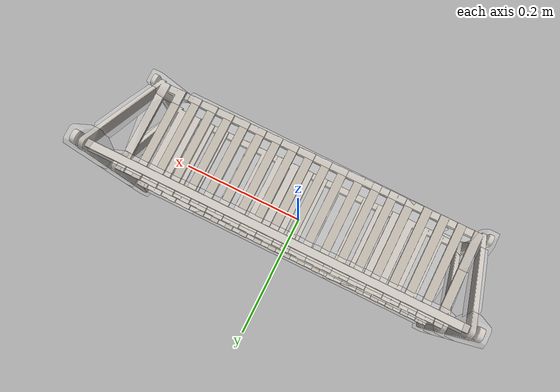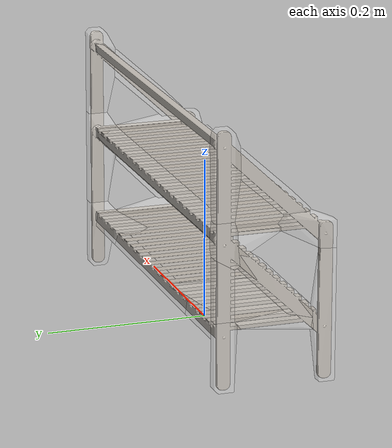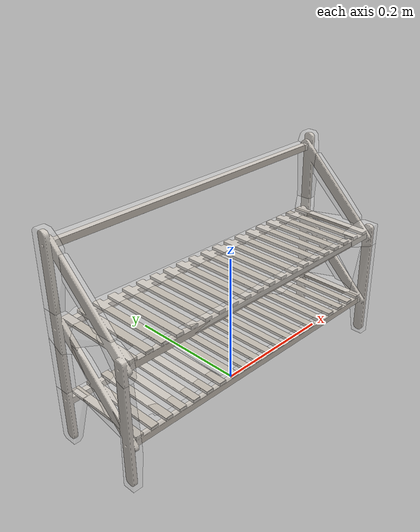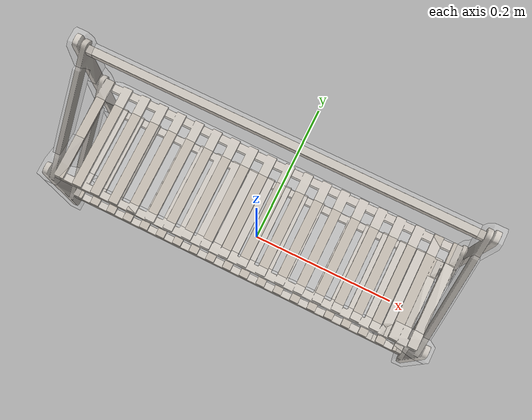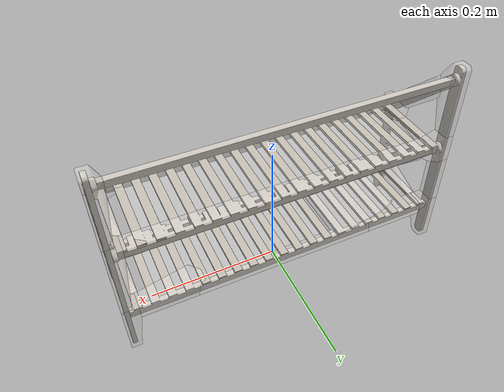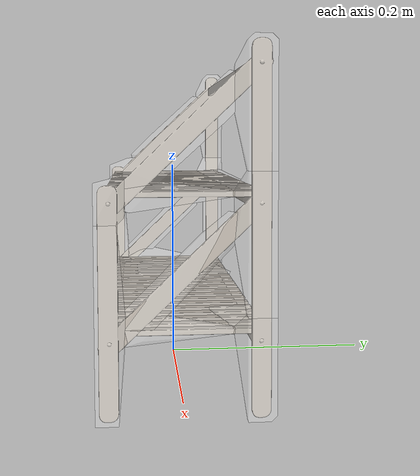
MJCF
<mujoco model="model">
  <compiler angle="radian"/>
  <asset>
    <mesh file="visual/Shelf007.obj" name="Shelf007_vis"/>
    <texture file="visual/T_Shelf007_BC001.png" name="Shelf007_material" type="2d"/>
    <material name="Shelf007_material" rgba="1 1 1 1.0" texture="Shelf007_material" shininess="0.4472135901451111" specular="0.3103448502657381"/>
    <mesh file="collision/Shelf007013.obj" name="Shelf007013_mesh"/>
    <mesh file="collision/Shelf007021.obj" name="Shelf007021_mesh"/>
    <mesh file="collision/Shelf007018.obj" name="Shelf007018_mesh"/>
    <mesh file="collision/Shelf007016.obj" name="Shelf007016_mesh"/>
    <mesh file="collision/Shelf007002.obj" name="Shelf007002_mesh"/>
    <mesh file="collision/Shelf007014.obj" name="Shelf007014_mesh"/>
    <mesh file="collision/Shelf007004.obj" name="Shelf007004_mesh"/>
    <mesh file="collision/Shelf007012.obj" name="Shelf007012_mesh"/>
    <mesh file="collision/Shelf007030.obj" name="Shelf007030_mesh"/>
    <mesh file="collision/Shelf007031.obj" name="Shelf007031_mesh"/>
    <mesh file="collision/Shelf007011.obj" name="Shelf007011_mesh"/>
    <mesh file="collision/Shelf007029.obj" name="Shelf007029_mesh"/>
    <mesh file="collision/Shelf007008.obj" name="Shelf007008_mesh"/>
    <mesh file="collision/Shelf007003.obj" name="Shelf007003_mesh"/>
    <mesh file="collision/Shelf007005.obj" name="Shelf007005_mesh"/>
    <mesh file="collision/Shelf007025.obj" name="Shelf007025_mesh"/>
    <mesh file="collision/Shelf007023.obj" name="Shelf007023_mesh"/>
    <mesh file="collision/Shelf007009.obj" name="Shelf007009_mesh"/>
    <mesh file="collision/Shelf007001.obj" name="Shelf007001_mesh"/>
    <mesh file="collision/Shelf007000.obj" name="Shelf007000_mesh"/>
    <mesh file="collision/Shelf007024.obj" name="Shelf007024_mesh"/>
    <mesh file="collision/Shelf007007.obj" name="Shelf007007_mesh"/>
    <mesh file="collision/Shelf007020.obj" name="Shelf007020_mesh"/>
    <mesh file="collision/Shelf007010.obj" name="Shelf007010_mesh"/>
    <mesh file="collision/Shelf007017.obj" name="Shelf007017_mesh"/>
    <mesh file="collision/Shelf007022.obj" name="Shelf007022_mesh"/>
    <mesh file="collision/Shelf007015.obj" name="Shelf007015_mesh"/>
    <mesh file="collision/Shelf007026.obj" name="Shelf007026_mesh"/>
    <mesh file="collision/Shelf007028.obj" name="Shelf007028_mesh"/>
    <mesh file="collision/Shelf007027.obj" name="Shelf007027_mesh"/>
    <mesh file="collision/Shelf007019.obj" name="Shelf007019_mesh"/>
    <mesh file="collision/Shelf007006.obj" name="Shelf007006_mesh"/>
  </asset>
  <default>
    <default class="visual">
      <geom conaffinity="0" contype="0" group="1" type="mesh" density="100"/>
    </default>
    <default class="collision">
      <geom group="0" type="mesh" density="100" solimp="0.95 0.98 0.001" solref="0.004 1" rgba="1 1 1 0.25"/>
    </default>
    <default class="spawn">
      <geom group="0" rgba="1 1 1 0" contype="0" conaffinity="0"/>
      <site group="0" rgba="1 1 1 0"/>
    </default>
    <default class="region">
      <geom group="1" conaffinity="0" contype="0" rgba="0 1 0 0"/>
    </default>
  </default>
  <worldbody>
    <body>
      <body name="object">
        <geom mesh="Shelf007_vis" type="mesh" class="visual" material="Shelf007_material"/>
        <geom class="spawn" type="box" pos="0.0 -0.003763301883971651 0.24773754256236175" size="0.23394536056147303 0.06100323808686953 0.0640405286338623" name="spawn_1"/>
        <geom class="spawn" type="box" pos="0.0 -0.003763301883971651 0.12101581056417415" size="0.23394536056147303 0.06100323808686953 0.046879590526253505" name="spawn_2"/>
        <geom mesh="Shelf007013_mesh" type="mesh" class="collision"/>
        <geom mesh="Shelf007021_mesh" type="mesh" class="collision"/>
        <geom mesh="Shelf007018_mesh" type="mesh" class="collision"/>
        <geom mesh="Shelf007016_mesh" type="mesh" class="collision"/>
        <geom mesh="Shelf007002_mesh" type="mesh" class="collision"/>
        <geom mesh="Shelf007014_mesh" type="mesh" class="collision"/>
        <geom mesh="Shelf007004_mesh" type="mesh" class="collision"/>
        <geom mesh="Shelf007012_mesh" type="mesh" class="collision"/>
        <geom mesh="Shelf007030_mesh" type="mesh" class="collision"/>
        <geom mesh="Shelf007031_mesh" type="mesh" class="collision"/>
        <geom mesh="Shelf007011_mesh" type="mesh" class="collision"/>
        <geom mesh="Shelf007029_mesh" type="mesh" class="collision"/>
        <geom mesh="Shelf007008_mesh" type="mesh" class="collision"/>
        <geom mesh="Shelf007003_mesh" type="mesh" class="collision"/>
        <geom mesh="Shelf007005_mesh" type="mesh" class="collision"/>
        <geom mesh="Shelf007025_mesh" type="mesh" class="collision"/>
        <geom mesh="Shelf007023_mesh" type="mesh" class="collision"/>
        <geom mesh="Shelf007009_mesh" type="mesh" class="collision"/>
        <geom mesh="Shelf007001_mesh" type="mesh" class="collision"/>
        <geom mesh="Shelf007000_mesh" type="mesh" class="collision"/>
        <geom mesh="Shelf007024_mesh" type="mesh" class="collision"/>
        <geom mesh="Shelf007007_mesh" type="mesh" class="collision"/>
        <geom mesh="Shelf007020_mesh" type="mesh" class="collision"/>
        <geom mesh="Shelf007010_mesh" type="mesh" class="collision"/>
        <geom mesh="Shelf007017_mesh" type="mesh" class="collision"/>
        <geom mesh="Shelf007022_mesh" type="mesh" class="collision"/>
        <geom mesh="Shelf007015_mesh" type="mesh" class="collision"/>
        <geom mesh="Shelf007026_mesh" type="mesh" class="collision"/>
        <geom mesh="Shelf007028_mesh" type="mesh" class="collision"/>
        <geom mesh="Shelf007027_mesh" type="mesh" class="collision"/>
        <geom mesh="Shelf007019_mesh" type="mesh" class="collision"/>
        <geom mesh="Shelf007006_mesh" type="mesh" class="collision"/>
        <geom class="region" name="reg_bbox" type="box" pos="0.0 0.0007285 0.154363" size="0.25 0.0738095 0.157143"/>
      </body>
    </body>
  </worldbody>
</mujoco>
